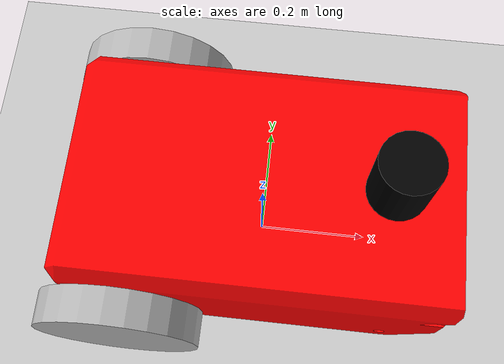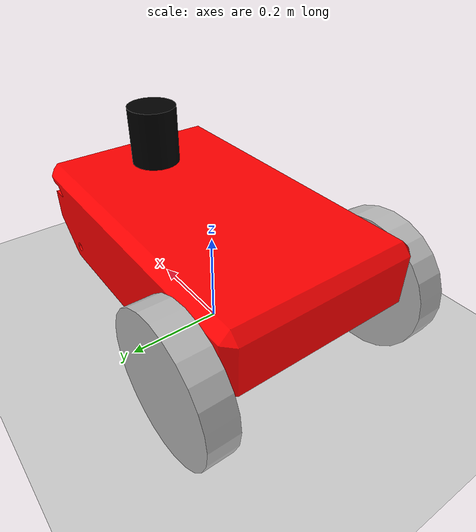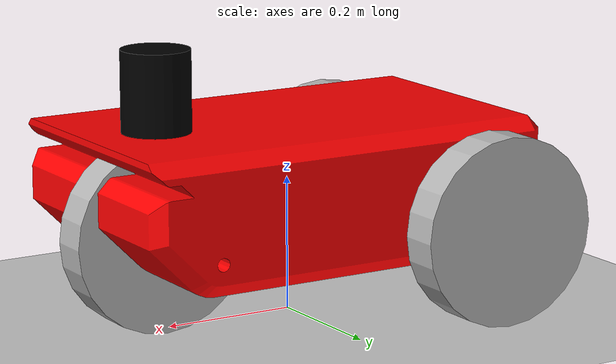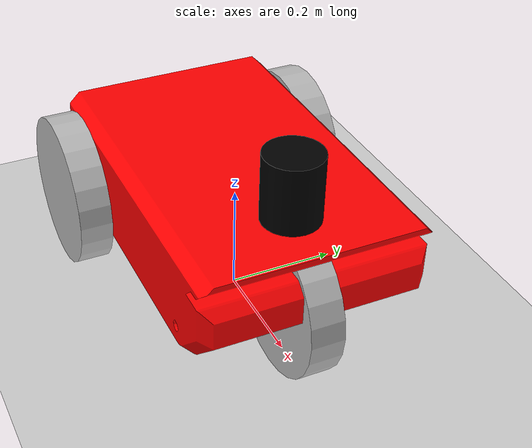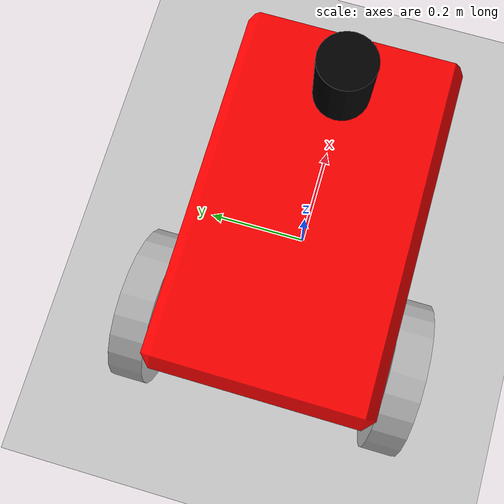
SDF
<sdf version="1.7">
 <world name="default">
  <model name="ground_plane">
   <static>1</static>
   <link name="link">
    <collision name="collision">
     <geometry><plane><normal>0 0 1</normal><size>100 100</size></plane></geometry>
     <surface><friction><ode><mu>100</mu><mu2>50</mu2></ode></friction></surface>
    </collision>
    <visual name="visual">
     <cast_shadows>0</cast_shadows>
     <geometry><plane><normal>0 0 1</normal><size>100 100</size></plane></geometry>
     <material>
      <script><uri>file://media/materials/scripts/gazebo.material</uri><name>Gazebo/Grey</name></script>
     </material>
    </visual>
   </link>
  </model>
  <light name="sun" type="directional">
   <pose>0 0 10 0 -0 0</pose>
   <diffuse>0.8 0.8 0.8 1</diffuse>
   <specular>0.2 0.2 0.2 1</specular>
   <attenuation>
    <range>1000</range>
    <constant>0.9</constant>
    <linear>0.01</linear>
    <quadratic>0.001</quadratic>
   </attenuation>
   <direction>-0.5 0.1 -0.9</direction>
   <spot><inner_angle>0</inner_angle><outer_angle>0</outer_angle><falloff>0</falloff></spot>
  </light>
  <gravity>0 0 -9.8</gravity>
  <magnetic_field>6e-06 2.3e-05 -4.2e-05</magnetic_field>
  <atmosphere type="adiabatic"/>
  <physics name="default_physics" default="0" type="ode">
   <max_step_size>0.001</max_step_size>
   <real_time_factor>1</real_time_factor>
   <real_time_update_rate>1000</real_time_update_rate>
  </physics>
  <scene><ambient>0.4 0.4 0.4 1</ambient><background>0.7 0.7 0.7 1</background><shadows>1</shadows></scene>
  <audio><device>default</device></audio>
  <spherical_coordinates>
   <surface_model>EARTH_WGS84</surface_model>
   <latitude_deg>47.8406</latitude_deg>
   <longitude_deg>10.6199</longitude_deg>
   <elevation>740</elevation>
   <heading_deg>180</heading_deg>
  </spherical_coordinates>
  <model name="basic_mobile_bot">
   <static>0</static>
   <pose>-0.000322 -0.003571 0.189999 -4e-06 8e-06 -0.00241</pose>
   <link name="base_footprint">
    <inertial>
     <inertia><ixx>1</ixx><ixy>0</ixy><ixz>0</ixz><iyy>1</iyy><iyz>0</iyz><izz>1</izz></inertia>
     <mass>1</mass>
    </inertial>
   </link>
   <link name="base_link">
    <collision name="base_collision">
     <pose>0 0 0.1 0 -0 0</pose>
     <geometry><box><size>0.7 0.39 0.2</size></box></geometry>
    </collision>
    <visual name="base_visual">
     <pose>0 0 -0.05 1.5708 -0 -3.14159</pose>
     <geometry>
      <mesh><uri>model://basic_mobile_bot_description/meshes/robot_base.stl</uri><scale>1 1 1</scale></mesh>
     </geometry>
     <material>
      <ambient>1 0 0 1</ambient>
      <diffuse>1 0 0 1</diffuse>
      <specular>0 0 0 1</specular>
      <emissive>0 0 0 1</emissive>
     </material>
    </visual>
    <inertial>
     <inertia><ixx>1</ixx><ixy>0</ixy><ixz>0</ixz><iyy>1</iyy><iyz>0</iyz><izz>1</izz></inertia>
     <mass>1</mass>
    </inertial>
   </link>
   <link name="imu_link">
    <sensor name="bmb_imu" type="imu">
     <always_on>1</always_on>
     <update_rate>100</update_rate>
     <visualize>1</visualize>
     <imu>
      <angular_velocity>
       <x><noise type="gaussian"><mean>0</mean><stddev>0.0002</stddev></noise></x>
       <y><noise type="gaussian"><mean>0</mean><stddev>0.0002</stddev></noise></y>
       <z><noise type="gaussian"><mean>0</mean><stddev>0.0002</stddev></noise></z>
      </angular_velocity>
      <linear_acceleration>
       <x><noise type="gaussian"><mean>0</mean><stddev>0.017</stddev></noise></x>
       <y><noise type="gaussian"><mean>0</mean><stddev>0.017</stddev></noise></y>
       <z><noise type="gaussian"><mean>0</mean><stddev>0.017</stddev></noise></z>
      </linear_acceleration>
      <orientation>
       <x><noise type="gaussian"><mean>0.0</mean><stddev>2e-3</stddev></noise></x>
       <y><noise type="gaussian"><mean>0.0</mean><stddev>2e-3</stddev></noise></y>
       <z><noise type="gaussian"><mean>0.0</mean><stddev>2e-3</stddev></noise></z>
      </orientation>
     </imu>
     <plugin name="basic_mobile_bot_imu" filename="libgazebo_ros_imu_sensor.so">
      <initial_orientation_as_reference>0</initial_orientation_as_reference>
      <frame_name>imu_link</frame_name>
      <ros><namespace>/imu</namespace><remapping>~/out:=data</remapping></ros>
     </plugin>
    </sensor>
    <inertial>
     <inertia><ixx>1</ixx><ixy>0</ixy><ixz>0</ixz><iyy>1</iyy><iyz>0</iyz><izz>1</izz></inertia>
     <mass>1</mass>
    </inertial>
   </link>
   <link name="gps_link">
    <sensor name="bmb_gps" type="gps">
     <always_on>1</always_on>
     <update_rate>10</update_rate>
     <gps>
      <position_sensing>
       <horizontal><noise type="gaussian"><mean>0</mean><stddev>0.01</stddev></noise></horizontal>
       <vertical><noise type="gaussian"><mean>0</mean><stddev>1</stddev></noise></vertical>
      </position_sensing>
     </gps>
     <plugin name="basic_mobile_bot_gps" filename="libgazebo_ros_gps_sensor.so">
      <ros><remapping>~/out:=gps/fix</remapping></ros>
     </plugin>
    </sensor>
    <inertial>
     <inertia><ixx>1</ixx><ixy>0</ixy><ixz>0</ixz><iyy>1</iyy><iyz>0</iyz><izz>1</izz></inertia>
     <mass>1</mass>
    </inertial>
   </link>
   <link name="lidar_link">
    <inertial>
     <pose>0.215 0 0.8 0 -0 0</pose>
     <inertia><ixx>0.001</ixx><ixy>0</ixy><ixz>0</ixz><iyy>0.001</iyy><iyz>0</iyz><izz>0.001</izz></inertia>
     <mass>0.114</mass>
    </inertial>
    <collision name="lidar_collision">
     <pose>0.215 0 0.13 0 -0 0</pose>
     <geometry><cylinder><radius>0.0508</radius><length>0.18</length></cylinder></geometry>
    </collision>
    <visual name="lidar_visual">
     <pose>0.215 0 0.13 0 -0 0</pose>
     <geometry><cylinder><radius>0.0508</radius><length>0.18</length></cylinder></geometry>
     <material>
      <ambient>0 0 0 1</ambient>
      <diffuse>0 0 0 1</diffuse>
      <specular>0 0 0 1</specular>
      <emissive>0 0 0 1</emissive>
     </material>
    </visual>
    <sensor name="lidar" type="ray">
     <pose>0.215 0 0.215 0 -0 0</pose>
     <always_on>1</always_on>
     <visualize>1</visualize>
     <update_rate>5</update_rate>
     <ray>
      <scan>
       <horizontal>
        <samples>120</samples>
        <resolution>1</resolution>
        <min_angle>0</min_angle>
        <max_angle>6.28318</max_angle>
       </horizontal>
       <vertical><samples>1</samples><min_angle>0</min_angle><max_angle>0</max_angle></vertical>
      </scan>
      <range><min>0.12</min><max>3.5</max><resolution>0.015</resolution></range>
      <noise><type>gaussian</type><mean>0</mean><stddev>0.01</stddev></noise>
     </ray>
     <plugin name="scan" filename="libgazebo_ros_ray_sensor.so">
      <ros><remapping>~/out:=scan</remapping></ros>
      <output_type>sensor_msgs/LaserScan</output_type>
      <frame_name>lidar_link</frame_name>
     </plugin>
    </sensor>
   </link>
   <link name="rear_axle_link">
    <pose>-0.221 0 -0.05 3.14159 1.57079 -1.57079</pose>
    <inertial>
     <inertia><ixx>1</ixx><ixy>0</ixy><ixz>0</ixz><iyy>1</iyy><iyz>0</iyz><izz>1</izz></inertia>
     <mass>1</mass>
    </inertial>
   </link>
   <link name="drivewhl_l_link">
    <pose>-0.221 0.23 -0.05 3.14159 1.57079 -1.57079</pose>
    <collision name="drivewhl_l_collision">
     <geometry><cylinder><radius>0.14</radius><length>0.06</length></cylinder></geometry>
    </collision>
    <visual name="drivewhl_l_visual">
     <geometry><cylinder><radius>0.14</radius><length>0.06</length></cylinder></geometry>
    </visual>
    <inertial>
     <inertia><ixx>1</ixx><ixy>0</ixy><ixz>0</ixz><iyy>1</iyy><iyz>0</iyz><izz>1</izz></inertia>
     <mass>1</mass>
    </inertial>
   </link>
   <link name="drivewhl_r_link">
    <pose>-0.221 -0.23 -0.05 3.14159 1.57079 -1.57079</pose>
    <collision name="drivewhl_r_collision">
     <geometry><cylinder><radius>0.14</radius><length>0.06</length></cylinder></geometry>
    </collision>
    <visual name="drivewhl_r_visual">
     <geometry><cylinder><radius>0.14</radius><length>0.06</length></cylinder></geometry>
    </visual>
    <inertial>
     <inertia><ixx>1</ixx><ixy>0</ixy><ixz>0</ixz><iyy>1</iyy><iyz>0</iyz><izz>1</izz></inertia>
     <mass>1</mass>
    </inertial>
   </link>
   <link name="steering_link">
    <pose>0.217 0 -0.05 3.14159 1.57079 -1.57079</pose>
    <inertial>
     <inertia><ixx>1</ixx><ixy>0</ixy><ixz>0</ixz><iyy>1</iyy><iyz>0</iyz><izz>1</izz></inertia>
     <mass>1</mass>
    </inertial>
   </link>
   <link name="steering_wheel_link">
    <pose>0.217 0 -0.05 3.14159 1.57079 -1.57079</pose>
    <inertial>
     <inertia><ixx>1</ixx><ixy>0</ixy><ixz>0</ixz><iyy>1</iyy><iyz>0</iyz><izz>1</izz></inertia>
     <mass>1</mass>
    </inertial>
    <geometry><cylinder><radius>0.14</radius><length>0.06</length></cylinder></geometry>
   </link>
   <link name="front_steering_wheel_link">
    <pose>0.217 0 -0.05 3.14159 1.57079 -1.57079</pose>
    <collision name="front_steering_wheel_collision">
     <geometry><cylinder><radius>0.14</radius><length>0.06</length></cylinder></geometry>
    </collision>
    <visual name="front_steering_wheel_visual">
     <geometry><cylinder><radius>0.14</radius><length>0.06</length></cylinder></geometry>
    </visual>
    <inertial>
     <inertia><ixx>1</ixx><ixy>0</ixy><ixz>0</ixz><iyy>1</iyy><iyz>0</iyz><izz>1</izz></inertia>
     <mass>1</mass>
    </inertial>
   </link>
   <joint name="base_joint" type="fixed"><parent>base_footprint</parent><child>base_link</child></joint>
   <joint name="rear_axle_joint" type="fixed"><parent>base_link</parent><child>rear_axle_link</child></joint>
   <joint name="drivewhl_l_joint" type="revolute">
    <parent>rear_axle_link</parent>
    <child>drivewhl_l_link</child>
    <axis>
     <xyz>0 0 1</xyz>
     <limit><lower>-1e+16</lower><upper>1e+16</upper></limit>
     <dynamics><spring_reference>0</spring_reference><spring_stiffness>0</spring_stiffness></dynamics>
    </axis>
   </joint>
   <joint name="drivewhl_r_joint" type="revolute">
    <parent>rear_axle_link</parent>
    <child>drivewhl_r_link</child>
    <axis>
     <xyz>0 0 1</xyz>
     <limit><lower>-1e+16</lower><upper>1e+16</upper></limit>
     <dynamics><spring_reference>0</spring_reference><spring_stiffness>0</spring_stiffness></dynamics>
    </axis>
   </joint>
   <joint name="steering_joint" type="fixed"><parent>base_link</parent><child>steering_link</child></joint>
   <joint name="steering_wheel_joint" type="revolute">
    <parent>steering_link</parent>
    <child>steering_wheel_link</child>
    <axis>
     <xyz>-1 0 0</xyz>
     <limit><lower>-1.047</lower><upper>1.047</upper><effort>10</effort><velocity>1</velocity></limit>
     <dynamics>
      <damping>1</damping>
      <spring_reference>0</spring_reference>
      <spring_stiffness>0</spring_stiffness>
     </dynamics>
    </axis>
   </joint>
   <joint name="front_steering_wheel_joint" type="revolute">
    <parent>steering_wheel_link</parent>
    <child>front_steering_wheel_link</child>
    <axis>
     <xyz>0 0 1</xyz>
     <limit><lower>-1e+16</lower><upper>1e+16</upper></limit>
     <dynamics><spring_reference>0</spring_reference><spring_stiffness>0</spring_stiffness></dynamics>
    </axis>
   </joint>
   <joint name="imu_joint" type="fixed"><parent>base_link</parent><child>imu_link</child></joint>
   <joint name="gps_joint" type="fixed"><parent>base_link</parent><child>gps_link</child></joint>
   <joint name="lidar_joint" type="fixed"><parent>base_link</parent><child>lidar_link</child></joint>
   <plugin name="gazebo_ros_ackermann_drive" filename="libgazebo_ros_ackermann_drive_debug.so">
    <ros><remapping>cmd_vel:=cmd_vel</remapping><remapping>odom:=wheel/odometry</remapping></ros>
    <rear_left_joint>drivewhl_l_joint</rear_left_joint>
    <rear_right_joint>drivewhl_r_joint</rear_right_joint>
    <left_steering_joint>steering_wheel_joint</left_steering_joint>
    <right_steering_joint>steering_wheel_joint</right_steering_joint>
    <front_right_joint>front_steering_wheel_joint</front_right_joint>
    <front_left_joint>front_steering_wheel_joint</front_left_joint>
    <update_rate>100.0</update_rate>
    <max_steer>0.6458</max_steer>
    <max_steering_angle>7.85</max_steering_angle>
    <max_speed>20</max_speed>
    <left_steering_pid_gain>1500 0 1</left_steering_pid_gain>
    <left_steering_i_range>0 0</left_steering_i_range>
    <right_steering_pid_gain>1500 0 1</right_steering_pid_gain>
    <right_steering_i_range>0 0</right_steering_i_range>
    <linear_velocity_pid_gain>1000 0 1</linear_velocity_pid_gain>
    <linear_velocity_i_range>0 0</linear_velocity_i_range>
    <publish_odom>1</publish_odom>
    <publish_odom_tf>0</publish_odom_tf>
    <publish_wheel_tf>0</publish_wheel_tf>
    <publish_distance>1</publish_distance>
    <odometry_frame>odom</odometry_frame>
    <robot_base_frame>base_link</robot_base_frame>
   </plugin>
   <plugin name="basic_mobile_bot_joint_state" filename="libgazebo_ros_joint_state_publisher.so">
    <ros><remapping>~/out:=joint_states</remapping></ros>
    <update_rate>30</update_rate>
    <joint_name>rear_axle_joint</joint_name>
    <joint_name>drivewhl_l_joint</joint_name>
    <joint_name>drivewhl_r_joint</joint_name>
    <joint_name>steering_joint</joint_name>
    <joint_name>steering_wheel_joint</joint_name>
    <joint_name>front_steering_wheel_joint</joint_name>
   </plugin>
  </model>
 </world>
</sdf>
